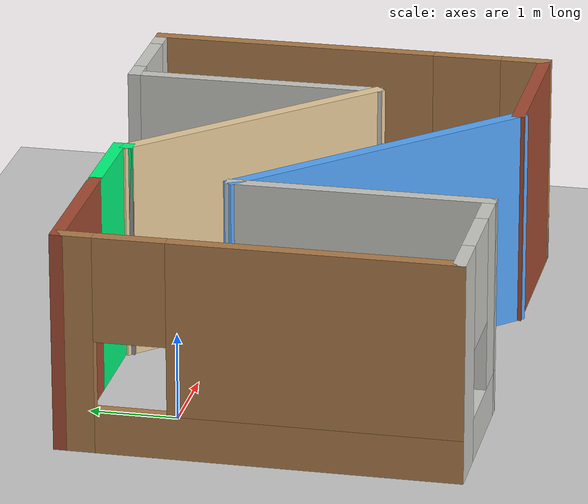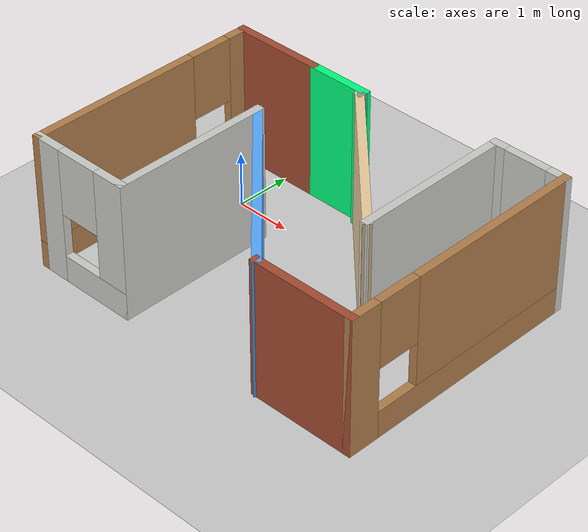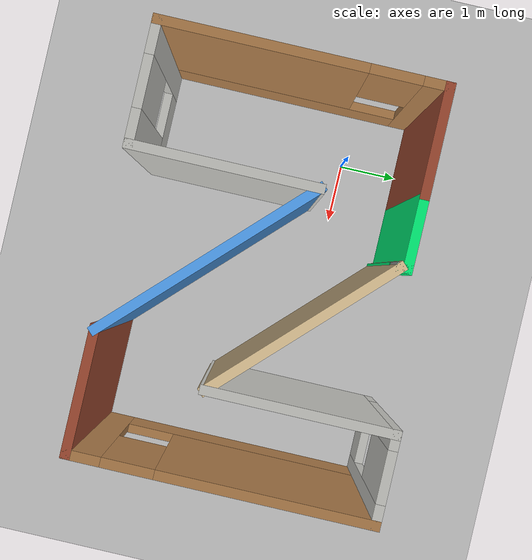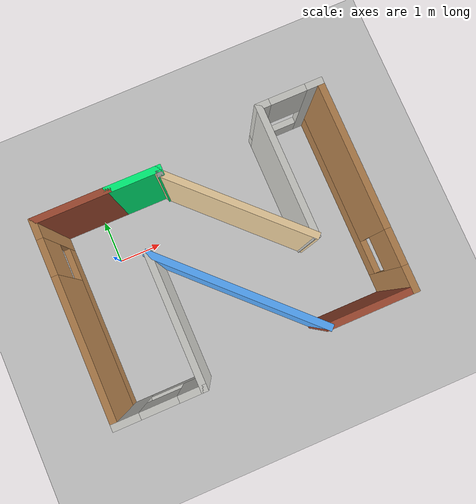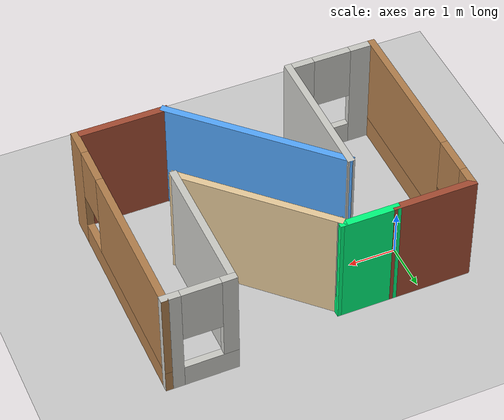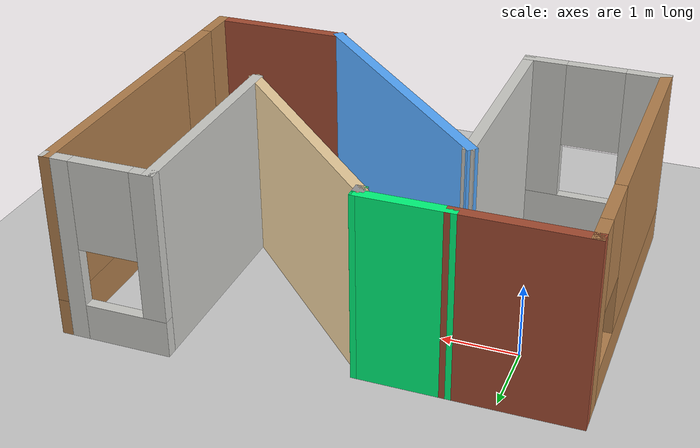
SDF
<sdf version="1.6">
 <world name="default">
  <light name="sun" type="directional">
   <pose>0 0 15 0 -0 0</pose>
   <diffuse>1 1 1 1</diffuse>
   <specular>0.1 0.1 0.1 1</specular>
   <attenuation>
    <range>1000</range>
    <constant>0.9</constant>
    <linear>0.01</linear>
    <quadratic>0.001</quadratic>
   </attenuation>
   <direction>-0.5 0.5 -1</direction>
  </light>
  <model name="ground_plane">
   <static>1</static>
   <link name="link">
    <collision name="collision">
     <geometry><plane><normal>0 0 1</normal><size>100 100</size></plane></geometry>
     <surface><friction><ode><mu>100</mu><mu2>50</mu2></ode></friction></surface>
    </collision>
    <visual name="visual">
     <transparency>1</transparency>
     <cast_shadows>0</cast_shadows>
     <geometry><plane><normal>0 0 1</normal><size>100 100</size></plane></geometry>
     <material>
      <script><uri>file://media/materials/scripts/gazebo.material</uri><name>Gazebo/Grey</name></script>
     </material>
    </visual>
   </link>
  </model>
  <gravity>0 0 -9.8</gravity>
  <magnetic_field>6e-06 2.3e-05 -4.2e-05</magnetic_field>
  <atmosphere type="adiabatic"/>
  <physics name="default_physics" default="0" type="ode">
   <max_step_size>0.001</max_step_size>
   <real_time_factor>1</real_time_factor>
   <real_time_update_rate>1000</real_time_update_rate>
  </physics>
  <scene><ambient>0.4 0.4 0.4 1</ambient><background>0.7 0.7 0.7 1</background><shadows>1</shadows></scene>
  <spherical_coordinates>
   <surface_model>EARTH_WGS84</surface_model>
   <latitude_deg>0</latitude_deg>
   <longitude_deg>0</longitude_deg>
   <elevation>0</elevation>
   <heading_deg>0</heading_deg>
  </spherical_coordinates>
  <model name="N">
   <pose>2.21371 -0.926802 0 0 -0 0</pose>
   <link name="Wall_14">
    <collision name="Wall_14_Collision">
     <geometry><box><size>1.75 0.15 2.5</size></box></geometry>
     <pose>0 0 1.25 0 -0 0</pose>
    </collision>
    <visual name="Wall_14_Visual">
     <pose>0 0 1.25 0 -0 0</pose>
     <geometry><box><size>1.75 0.15 2.5</size></box></geometry>
     <material>
      <script><uri>file://media/materials/scripts/gazebo.material</uri><name>Gazebo/Bricks</name></script>
      <ambient>1 1 1 1</ambient>
     </material>
    </visual>
    <pose>-2.41118 1.98618 0 0 -0 3.14159</pose>
   </link>
   <link name="Wall_15">
    <pose>-3.21118 -0.18882 0 0 0 -1.5708</pose>
    <visual name="Wall_15_Visual_0">
     <pose>-2.0175 0 1.25 0 -0 0</pose>
     <geometry><box><size>0.465 0.15 2.5</size></box></geometry>
     <material>
      <script><uri>file://media/materials/scripts/gazebo.material</uri><name>Gazebo/Wood</name></script>
      <ambient>1 1 1 1</ambient>
     </material>
    </visual>
    <collision name="Wall_15_Collision_0">
     <geometry><box><size>0.465 0.15 2.5</size></box></geometry>
     <pose>-2.0175 0 1.25 0 -0 0</pose>
    </collision>
    <visual name="Wall_15_Visual_1">
     <pose>0.2325 0 0.25 0 -0 0</pose>
     <geometry><box><size>4.035 0.15 0.5</size></box></geometry>
     <material>
      <script><uri>file://media/materials/scripts/gazebo.material</uri><name>Gazebo/Wood</name></script>
      <ambient>1 1 1 1</ambient>
     </material>
    </visual>
    <collision name="Wall_15_Collision_1">
     <geometry><box><size>4.035 0.15 0.5</size></box></geometry>
     <pose>0.2325 0 0.25 0 -0 0</pose>
    </collision>
    <visual name="Wall_15_Visual_2">
     <pose>0.6325 0 1.5 0 -0 0</pose>
     <geometry><box><size>3.235 0.15 2</size></box></geometry>
     <material>
      <script><uri>file://media/materials/scripts/gazebo.material</uri><name>Gazebo/Wood</name></script>
      <ambient>1 1 1 1</ambient>
     </material>
    </visual>
    <collision name="Wall_15_Collision_2">
     <geometry><box><size>3.235 0.15 2</size></box></geometry>
     <pose>0.6325 0 1.5 0 -0 0</pose>
    </collision>
    <visual name="Wall_15_Visual_3">
     <pose>-1.385 0 1.9 0 -0 0</pose>
     <geometry><box><size>0.8 0.15 1.2</size></box></geometry>
     <material>
      <script><uri>file://media/materials/scripts/gazebo.material</uri><name>Gazebo/Wood</name></script>
      <ambient>1 1 1 1</ambient>
     </material>
    </visual>
    <collision name="Wall_15_Collision_3">
     <geometry><box><size>0.8 0.15 1.2</size></box></geometry>
     <pose>-1.385 0 1.9 0 -0 0</pose>
    </collision>
   </link>
   <link name="Wall_16">
    <pose>-2.28618 -2.36382 0 0 -0 0</pose>
    <visual name="Wall_16_Visual_0">
     <pose>-0.7025 0 1.25 0 -0 0</pose>
     <geometry><box><size>0.595 0.15 2.5</size></box></geometry>
     <material>
      <script><uri>file://media/materials/scripts/gazebo.material</uri><name>Gazebo/CeilingTiled</name></script>
      <ambient>1 1 1 1</ambient>
     </material>
    </visual>
    <collision name="Wall_16_Collision_0">
     <geometry><box><size>0.595 0.15 2.5</size></box></geometry>
     <pose>-0.7025 0 1.25 0 -0 0</pose>
    </collision>
    <visual name="Wall_16_Visual_1">
     <pose>0.2975 0 0.25 0 -0 0</pose>
     <geometry><box><size>1.405 0.15 0.5</size></box></geometry>
     <material>
      <script><uri>file://media/materials/scripts/gazebo.material</uri><name>Gazebo/CeilingTiled</name></script>
      <ambient>1 1 1 1</ambient>
     </material>
    </visual>
    <collision name="Wall_16_Collision_1">
     <geometry><box><size>1.405 0.15 0.5</size></box></geometry>
     <pose>0.2975 0 0.25 0 -0 0</pose>
    </collision>
    <visual name="Wall_16_Visual_2">
     <pose>0.6975 0 1.5 0 -0 0</pose>
     <geometry><box><size>0.605 0.15 2</size></box></geometry>
     <material>
      <script><uri>file://media/materials/scripts/gazebo.material</uri><name>Gazebo/CeilingTiled</name></script>
      <ambient>1 1 1 1</ambient>
     </material>
    </visual>
    <collision name="Wall_16_Collision_2">
     <geometry><box><size>0.605 0.15 2</size></box></geometry>
     <pose>0.6975 0 1.5 0 -0 0</pose>
    </collision>
    <visual name="Wall_16_Visual_3">
     <pose>-0.005 0 1.9 0 -0 0</pose>
     <geometry><box><size>0.8 0.15 1.2</size></box></geometry>
     <material>
      <script><uri>file://media/materials/scripts/gazebo.material</uri><name>Gazebo/CeilingTiled</name></script>
      <ambient>1 1 1 1</ambient>
     </material>
    </visual>
    <collision name="Wall_16_Collision_3">
     <geometry><box><size>0.8 0.15 1.2</size></box></geometry>
     <pose>-0.005 0 1.9 0 -0 0</pose>
    </collision>
   </link>
   <link name="Wall_17">
    <collision name="Wall_17_Collision">
     <geometry><box><size>3 0.15 2.5</size></box></geometry>
     <pose>0 0 1.25 0 -0 0</pose>
    </collision>
    <visual name="Wall_17_Visual">
     <pose>0 0 1.25 0 -0 0</pose>
     <geometry><box><size>3 0.15 2.5</size></box></geometry>
     <material>
      <script><uri>file://media/materials/scripts/gazebo.material</uri><name>Gazebo/CeilingTiled</name></script>
      <ambient>0.333333 0.666667 1 1</ambient>
     </material>
    </visual>
    <pose>-1.36118 -0.93882 0 0 -0 1.5708</pose>
   </link>
   <link name="Wall_18">
    <collision name="Wall_18_Collision">
     <geometry><box><size>4 0.15 2.5</size></box></geometry>
     <pose>0 0 1.25 0 -0 0</pose>
    </collision>
    <visual name="Wall_18_Visual">
     <pose>0 0 1.25 0 -0 0</pose>
     <geometry><box><size>4 0.15 2.5</size></box></geometry>
     <material>
      <script><uri>file://media/materials/scripts/gazebo.material</uri><name>Gazebo/Grey</name></script>
      <ambient>0.333333 0.666667 1 1</ambient>
     </material>
    </visual>
    <pose>0 -0.875 0 0 0 -0.785398</pose>
   </link>
   <link name="Wall_19">
    <collision name="Wall_19_Collision">
     <geometry><box><size>2 0.15 2.5</size></box></geometry>
     <pose>0 0 1.25 0 -0 0</pose>
    </collision>
    <visual name="Wall_19_Visual">
     <pose>0 0 1.25 0 -0 0</pose>
     <geometry><box><size>2 0.15 2.5</size></box></geometry>
     <material>
      <script><uri>file://media/materials/scripts/gazebo.material</uri><name>Gazebo/Bricks</name></script>
      <ambient>1 1 1 1</ambient>
     </material>
    </visual>
    <pose>2.28618 -2.23618 0 0 -0 0</pose>
   </link>
   <link name="Wall_20">
    <pose>3.21118 0.063819 0 0 -0 1.5708</pose>
    <visual name="Wall_20_Visual_0">
     <pose>-2.08132 0 1.25 0 -0 0</pose>
     <geometry><box><size>0.587361 0.15 2.5</size></box></geometry>
     <material>
      <script><uri>file://media/materials/scripts/gazebo.material</uri><name>Gazebo/Wood</name></script>
      <ambient>1 1 1 1</ambient>
     </material>
    </visual>
    <collision name="Wall_20_Collision_0">
     <geometry><box><size>0.587361 0.15 2.5</size></box></geometry>
     <pose>-2.08132 0 1.25 0 -0 0</pose>
    </collision>
    <visual name="Wall_20_Visual_1">
     <pose>0.293681 0 0.25 0 -0 0</pose>
     <geometry><box><size>4.16264 0.15 0.5</size></box></geometry>
     <material>
      <script><uri>file://media/materials/scripts/gazebo.material</uri><name>Gazebo/Wood</name></script>
      <ambient>1 1 1 1</ambient>
     </material>
    </visual>
    <collision name="Wall_20_Collision_1">
     <geometry><box><size>4.16264 0.15 0.5</size></box></geometry>
     <pose>0.293681 0 0.25 0 -0 0</pose>
    </collision>
    <visual name="Wall_20_Visual_2">
     <pose>0.693681 0 1.5 0 -0 0</pose>
     <geometry><box><size>3.36264 0.15 2</size></box></geometry>
     <material>
      <script><uri>file://media/materials/scripts/gazebo.material</uri><name>Gazebo/Wood</name></script>
      <ambient>1 1 1 1</ambient>
     </material>
    </visual>
    <collision name="Wall_20_Collision_2">
     <geometry><box><size>3.36264 0.15 2</size></box></geometry>
     <pose>0.693681 0 1.5 0 -0 0</pose>
    </collision>
    <visual name="Wall_20_Visual_3">
     <pose>-1.38764 0 1.9 0 -0 0</pose>
     <geometry><box><size>0.8 0.15 1.2</size></box></geometry>
     <material>
      <script><uri>file://media/materials/scripts/gazebo.material</uri><name>Gazebo/Wood</name></script>
      <ambient>1 1 1 1</ambient>
     </material>
    </visual>
    <collision name="Wall_20_Collision_3">
     <geometry><box><size>0.8 0.15 1.2</size></box></geometry>
     <pose>-1.38764 0 1.9 0 -0 0</pose>
    </collision>
   </link>
   <link name="Wall_21">
    <pose>2.53618 2.36382 0 0 -0 3.14159</pose>
    <visual name="Wall_21_Visual_0">
     <pose>-0.556319 0 1.25 0 -0 0</pose>
     <geometry><box><size>0.387361 0.15 2.5</size></box></geometry>
     <material>
      <script><uri>file://media/materials/scripts/gazebo.material</uri><name>Gazebo/CeilingTiled</name></script>
      <ambient>0.435294 0.796078 0.67451 1</ambient>
     </material>
    </visual>
    <collision name="Wall_21_Collision_0">
     <geometry><box><size>0.387361 0.15 2.5</size></box></geometry>
     <pose>-0.556319 0 1.25 0 -0 0</pose>
    </collision>
    <visual name="Wall_21_Visual_1">
     <pose>0.193681 0 0.25 0 -0 0</pose>
     <geometry><box><size>1.11264 0.15 0.5</size></box></geometry>
     <material>
      <script><uri>file://media/materials/scripts/gazebo.material</uri><name>Gazebo/CeilingTiled</name></script>
      <ambient>0.435294 0.796078 0.67451 1</ambient>
     </material>
    </visual>
    <collision name="Wall_21_Collision_1">
     <geometry><box><size>1.11264 0.15 0.5</size></box></geometry>
     <pose>0.193681 0 0.25 0 -0 0</pose>
    </collision>
    <visual name="Wall_21_Visual_2">
     <pose>0.593681 0 1.5 0 -0 0</pose>
     <geometry><box><size>0.312639 0.15 2</size></box></geometry>
     <material>
      <script><uri>file://media/materials/scripts/gazebo.material</uri><name>Gazebo/CeilingTiled</name></script>
      <ambient>0.435294 0.796078 0.67451 1</ambient>
     </material>
    </visual>
    <collision name="Wall_21_Collision_2">
     <geometry><box><size>0.312639 0.15 2</size></box></geometry>
     <pose>0.593681 0 1.5 0 -0 0</pose>
    </collision>
    <visual name="Wall_21_Visual_3">
     <pose>0.037361 0 1.9 0 -0 0</pose>
     <geometry><box><size>0.8 0.15 1.2</size></box></geometry>
     <material>
      <script><uri>file://media/materials/scripts/gazebo.material</uri><name>Gazebo/CeilingTiled</name></script>
      <ambient>0.435294 0.796078 0.67451 1</ambient>
     </material>
    </visual>
    <collision name="Wall_21_Collision_3">
     <geometry><box><size>0.8 0.15 1.2</size></box></geometry>
     <pose>0.037361 0 1.9 0 -0 0</pose>
    </collision>
   </link>
   <link name="Wall_22">
    <collision name="Wall_22_Collision">
     <geometry><box><size>3 0.15 2.5</size></box></geometry>
     <pose>0 0 1.25 0 -0 0</pose>
    </collision>
    <visual name="Wall_22_Visual">
     <pose>0 0 1.25 0 -0 0</pose>
     <geometry><box><size>3 0.15 2.5</size></box></geometry>
     <material>
      <script><uri>file://media/materials/scripts/gazebo.material</uri><name>Gazebo/CeilingTiled</name></script>
      <ambient>0.435294 0.796078 0.67451 1</ambient>
     </material>
    </visual>
    <pose>1.86118 0.938819 0 0 0 -1.5708</pose>
   </link>
   <link name="Wall_23">
    <collision name="Wall_23_Collision">
     <geometry><box><size>3.5 0.15 2.5</size></box></geometry>
     <pose>0 0 1.25 0 -0 0</pose>
    </collision>
    <visual name="Wall_23_Visual">
     <pose>0 0 1.25 0 -0 0</pose>
     <geometry><box><size>3.5 0.15 2.5</size></box></geometry>
     <material>
      <script><uri>file://media/materials/scripts/gazebo.material</uri><name>Gazebo/Grey</name></script>
      <ambient>0.921569 0.807843 0.615686 1</ambient>
     </material>
    </visual>
    <pose>0.676777 0.698223 0 0 -0 2.35619</pose>
   </link>
   <link name="Wall_24">
    <collision name="Wall_24_Collision">
     <geometry><box><size>0.15 0.15 2.5</size></box></geometry>
     <pose>0 0 1.25 0 -0 0</pose>
    </collision>
    <visual name="Wall_24_Visual">
     <pose>0 0 1.25 0 -0 0</pose>
     <geometry><box><size>0.15 0.15 2.5</size></box></geometry>
     <material>
      <script><uri>file://media/materials/scripts/gazebo.material</uri><name>Gazebo/Grey</name></script>
      <ambient>1 1 1 1</ambient>
     </material>
    </visual>
    <pose>-0.507627 1.88263 0 0 -0 0</pose>
   </link>
   <link name="Wall_25">
    <collision name="Wall_25_Collision">
     <geometry><box><size>0.25 0.15 2.5</size></box></geometry>
     <pose>0 0 1.25 0 -0 0</pose>
    </collision>
    <visual name="Wall_25_Visual">
     <pose>0 0 1.25 0 -0 0</pose>
     <geometry><box><size>0.25 0.15 2.5</size></box></geometry>
     <material>
      <script><uri>file://media/materials/scripts/gazebo.material</uri><name>Gazebo/Grey</name></script>
      <ambient>0 1 0.498039 1</ambient>
     </material>
    </visual>
    <pose>-0.507627 1.93263 0 0 -0 1.5708</pose>
   </link>
   <link name="Wall_26">
    <collision name="Wall_26_Collision">
     <geometry><box><size>1.25356 0.15 2.5</size></box></geometry>
     <pose>0 0 1.25 0 -0 0</pose>
    </collision>
    <visual name="Wall_26_Visual">
     <pose>0 0 1.25 0 -0 0</pose>
     <geometry><box><size>1.25356 0.15 2.5</size></box></geometry>
     <material>
      <script><uri>file://media/materials/scripts/gazebo.material</uri><name>Gazebo/Grey</name></script>
      <ambient>0 1 0.498039 1</ambient>
     </material>
    </visual>
    <pose>-1.0594 1.9844 0 0 -0 3.13837</pose>
   </link>
   <static>1</static>
  </model>
 </world>
</sdf>
